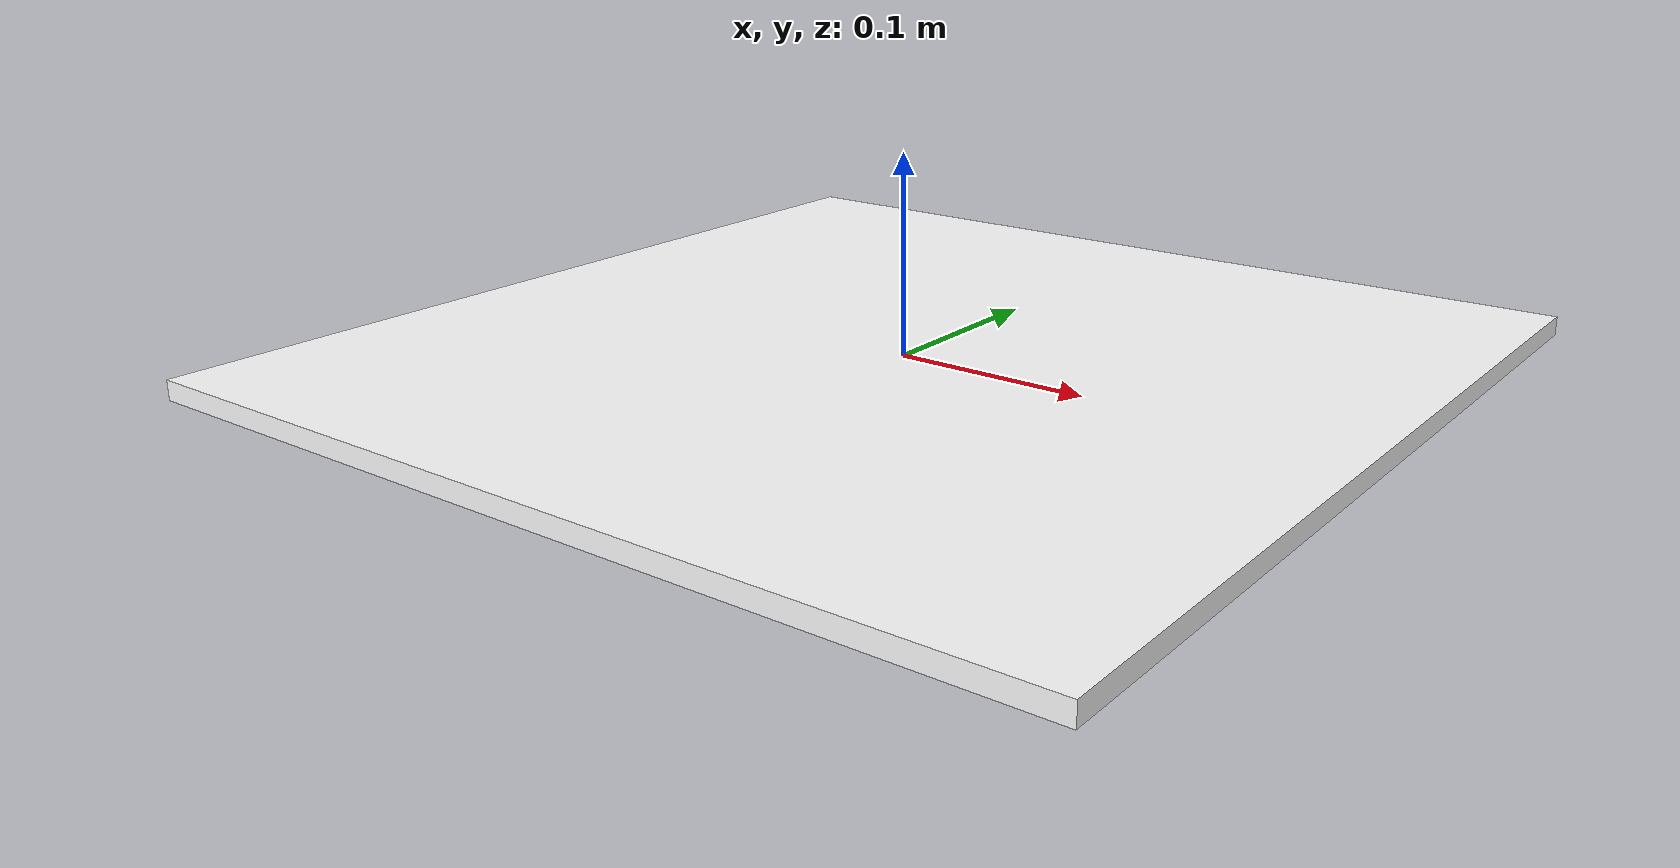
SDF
<?xml version="1.0" ?>
<sdf version="1.9">
  <model name="aruco_marker_26">
    <static>true</static>
    <link name="link">
      <visual name="visual">
        <geometry>
          <box>
            <size>0.48 0.48 0.01</size>
          </box>
        </geometry>
        <material>
          <ambient>1 1 1 1</ambient>
          <diffuse>1 1 1 1</diffuse>
          <specular>0 0 0 1</specular>
          <pbr>
            <metal>
              <albedo_map>materials/textures/marker_26.png</albedo_map>
              <roughness>0.6</roughness>
              <metalness>0</metalness>
            </metal>
          </pbr>
        </material>
      </visual>
      <collision name="collision">
        <geometry>
          <box>
            <size>0.48 0.48 0.01</size>
          </box>
        </geometry>
      </collision>
    </link>
  </model>
</sdf>
